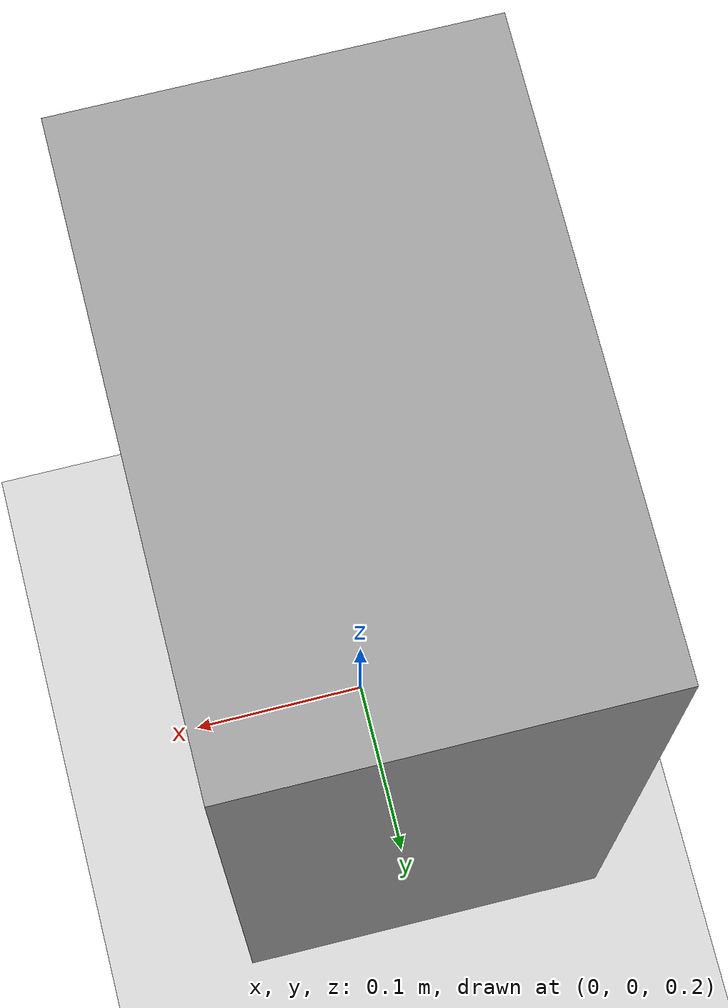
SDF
<?xml version="1.0" ?>
<sdf version="1.6">
  <world name="humanoid_simple_world">
    <include>
      <uri>model://sun</uri>
    </include>
    <include>
      <uri>model://ground_plane</uri>
    </include>

    <!-- Simple Humanoid Robot -->
    <model name="simple_humanoid">
      <pose>0 0 0.5 0 0 0</pose> <!-- Initial pose of the robot -->
      <static>false</static> <!-- Robot can move -->
      <link name="base_link">
        <visual>
          <geometry><box><size>0.1 0.1 0.1</size></box></geometry>
          <material><script><uri>file://media/materials/scripts/gazebo.material</uri><name>Gazebo/Orange</name></script></material>
        </visual>
        <collision>
          <geometry><box><size>0.1 0.1 0.1</size></box></geometry>
        </collision>
        <inertial>
          <mass>1.0</mass>
          <inertia><ixx>0.01</ixx><ixy>0</ixy><ixz>0</ixz><iyy>0.01</iyy><iyz>0</iyz><izz>0.01</izz></inertia>
        </inertial>
      </link>

      <!-- Torso -->
      <link name="torso">
        <visual>
          <geometry><box><size>0.2 0.3 0.5</size></box></geometry>
          <material><script><uri>file://media/materials/scripts/gazebo.material</uri><name>Gazebo/Grey</name></script></material>
        </visual>
        <collision>
          <geometry><box><size>0.2 0.3 0.5</size></box></geometry>
        </collision>
        <inertial>
          <mass>5.0</mass>
          <inertia><ixx>0.5</ixx><ixy>0</ixy><ixz>0</ixz><iyy>0.5</iyy><iyz>0</iyz><izz>0.5</izz></inertia>
        </inertial>
      </link>
      <joint name="base_to_torso" type="fixed">
        <parent>base_link</parent>
        <child>torso</child>
        <pose>0 0 0.25 0 0 0</pose>
      </joint>

      <!-- Head -->
      <link name="head">
        <visual>
          <geometry><sphere><radius>0.1</radius></sphere></geometry>
          <material><script><uri>file://media/materials/scripts/gazebo.material</uri><name>Gazebo/White</name></script></material>
        </visual>
        <collision>
          <geometry><sphere><radius>0.1</radius></sphere></geometry>
        </collision>
        <inertial>
          <mass>1.0</mass>
          <inertia><ixx>0.01</ixx><ixy>0</ixy><ixz>0</ixz><iyy>0.01</iyy><iyz>0</iyz><izz>0.01</izz></inertia>
        </inertial>
      </link>
      <joint name="torso_to_head" type="revolute">
        <parent>torso</parent>
        <child>head</child>
        <pose>0 0 0.3 0 0 0</pose>
        <axis><xyz>0 0 1</xyz></axis>
        <limit lower="-1.57" upper="1.57" velocity="100" effort="100"/></joint>

      <!-- Placeholder for right arm - expand as needed -->
      <link name="right_upper_arm">
        <visual>
          <geometry><cylinder><radius>0.04</radius><length>0.3</length></cylinder></geometry>
          <material><script><uri>file://media/materials/scripts/gazebo.material</uri><name>Gazebo/Grey</name></script></material>
        </visual>
        <collision>
          <geometry><cylinder><radius>0.04</radius><length>0.3</length></cylinder></geometry>
        </collision>
        <inertial>
          <mass>0.5</mass>
          <inertia><ixx>0.005</ixx><ixy>0</ixy><ixz>0</ixz><iyy>0.005</iyy><iyz>0</iyz><izz>0.005</izz></inertia>
        </inertial>
      </link>
      <joint name="torso_to_right_upper_arm" type="revolute">
        <parent>torso</parent>
        <child>right_upper_arm</child>
        <pose>0 -0.2 0.2 0 0 0</pose>
        <axis><xyz>0 1 0</xyz></axis>
        <limit lower="-1.57" upper="1.57" velocity="100" effort="100"/>
      </joint>

      <!-- Placeholder for left arm - expand as needed -->
      <link name="left_upper_arm">
        <visual>
          <geometry><cylinder><radius>0.04</radius><length>0.3</length></cylinder></geometry>
          <material><script><uri>file://media/materials/scripts/gazebo.material</uri><name>Gazebo/Grey</name></script></material>
        </visual>
        <collision>
          <geometry><cylinder><radius>0.04</radius><length>0.3</length></cylinder></geometry>
        </collision>
        <inertial>
          <mass>0.5</mass>
          <inertia><ixx>0.005</ixx><ixy>0</ixy><ixz>0</ixz><iyy>0.005</iyy><iyz>0</iyz><izz>0.005</izz></inertia>
        </inertial>
      </link>
      <joint name="torso_to_left_upper_arm" type="revolute">
        <parent>torso</parent>
        <child>left_upper_arm</child>
        <pose>0 0.2 0.2 0 0 0</pose>
        <axis><xyz>0 1 0</xyz></axis>
        <limit lower="-1.57" upper="1.57" velocity="100" effort="100"/>
      </joint>
    </model>
  </world>
</sdf>
